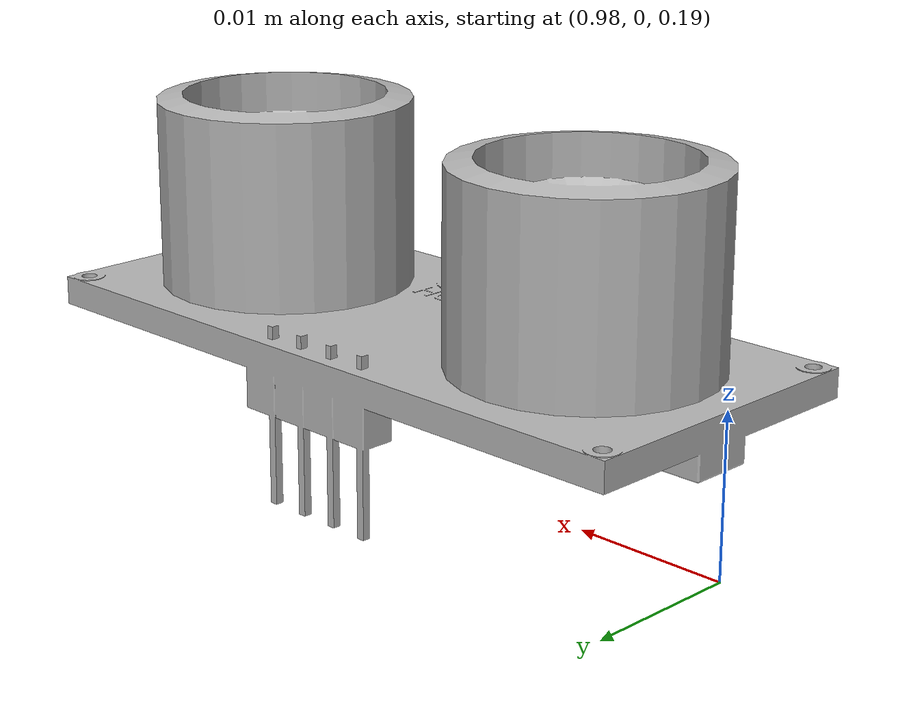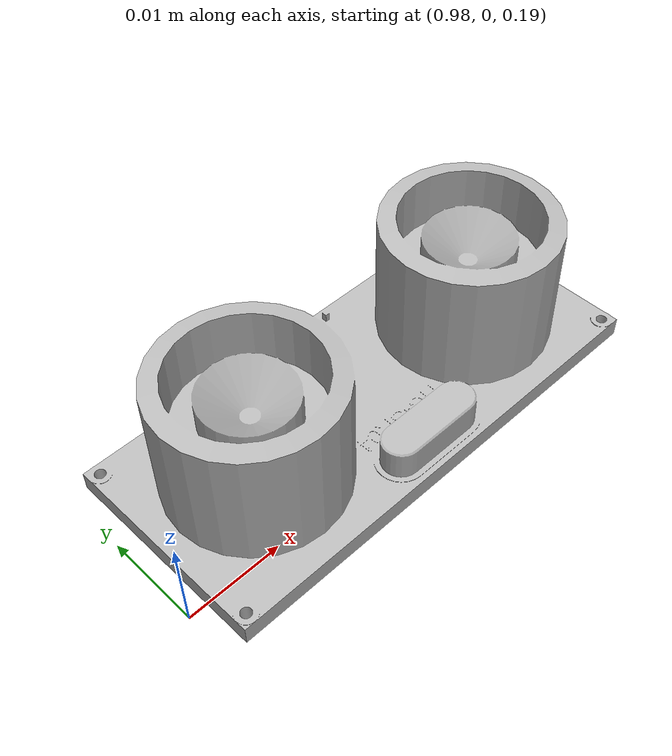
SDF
<?xml version="1.0" encoding="utf-8"?>
<sdf version="1.6">
    <model name="hcsr_04">
        <pose>1 0 0.2 0 0 0</pose>
        <link name="hc_sr04_base">
            <visual name="visual">
                <geometry>
                    <mesh>
                        <uri>meshes/hc_sr04.dae</uri>
                    </mesh>
                </geometry>
            </visual>
            <collision name="collision">
                <geometry>
                    <box>
                        <size>0.05 0.02 0.03</size>
                    </box>
                </geometry>
            </collision>
            <sensor name="hc_sr04_distance" type="gpu_lidar">
                <pose>0 0 0 0 -1.57 0</pose>
                <visualize>true</visualize>
                <update_rate>20</update_rate>
                <topic>distance</topic>
                <lidar>
                    <scan>
                        <horizontal>
                            <samples>1</samples>
                            <resolution>1</resolution>
                            <min_angle>0</min_angle>
                            <max_angle>0</max_angle>
                        </horizontal>
                        <vertical>
                            <samples>1</samples>
                            <resolution>1</resolution>
                            <min_angle>0</min_angle>
                            <max_angle>0</max_angle>
                        </vertical>
                    </scan>
                    <range>
                        <min>0.1</min>
                        <max>2.0</max>
                        <resolution>0.1</resolution>
                    </range>
                    <noise>
                        <type>gaussian</type>
                        <mean>0</mean>
                        <stddev>0.01</stddev>
                    </noise>
                </lidar>
            </sensor>
        </link>
    </model>
</sdf>
